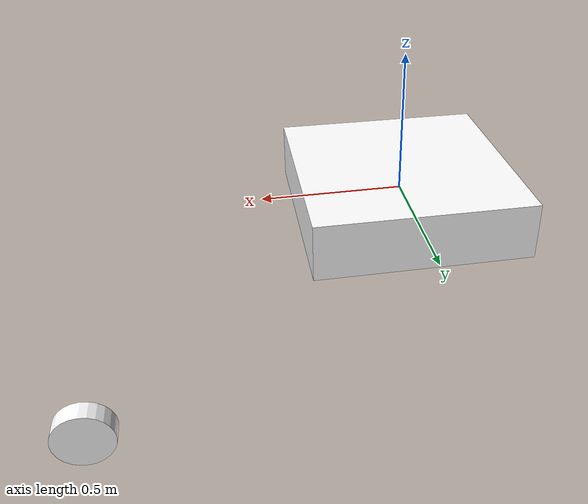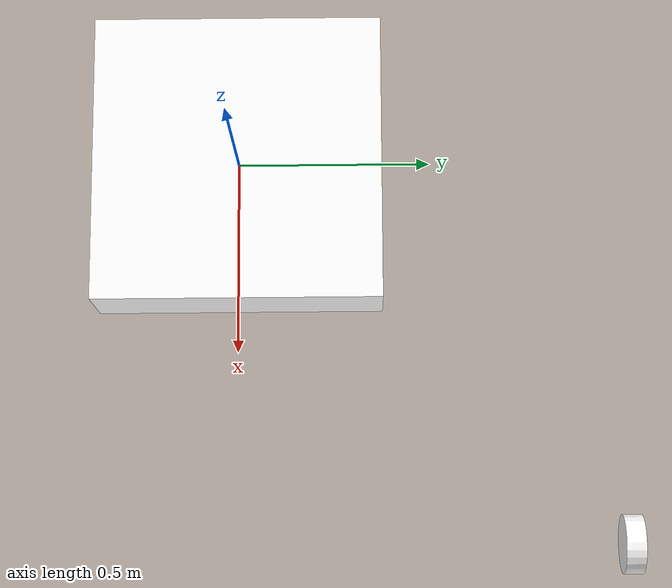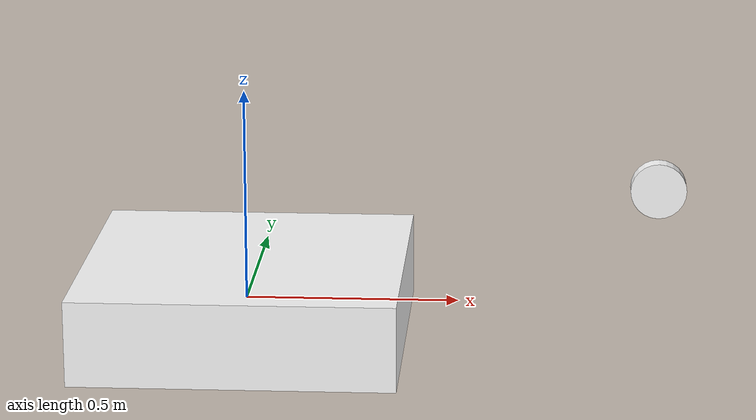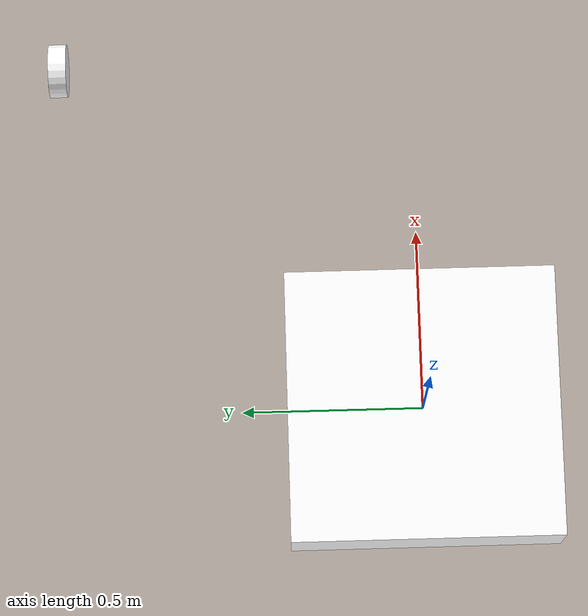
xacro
<?xml version="1.0"?>
<robot name="holonomicdrive" xmlns:xacro="http://ros.org/wiki/xacro">

  <material name="white">
    <color rgba="1 1 1 1"/>
  </material>

  <material name="black">
    <color rgba="0 0 0 1"/>
  </material>

  <xacro:macro name="default_inertial" params="mass">
    <inertial>
      <mass value="${mass}" />
      <inertia ixx="1.0" ixy="0.0" ixz="0.0" iyy="1.0" iyz="0.0" izz="1.0" />
    </inertial>
  </xacro:macro>

  <xacro:property name="robot_width" value = "${0.75}"/>
  <xacro:property name="robot_length" value = "${0.75}"/>

<link name="base_link">
    <visual>
      <geometry>
        <box size = "${robot_width} ${robot_length} 0.2"/>
      </geometry>
      <material name = "white"/>
      <origin xyz = "0 0 0" rpy = "0 0 0"/>
    </visual>
    <collision>
      <geometry>
        <box size = "${robot_width} ${robot_length} 0.2"/>
      </geometry>
      <origin xyz = "0 0 0" rpy = "0 0 0"/>
    </collision>
    <xacro:default_inertial mass="8"/>
  </link>

  <link name="right_front_wheel">
    <visual>
      <geometry>
        <cylinder radius = "0.075" length = "0.05"/>
      </geometry>
      <material name = "white"/>
      <origin rpy="${pi/2} 0 0"/>
    </visual>
    <collision>
     <geometry>
        <cylinder radius = "0.075" length = "0.05"/>
      </geometry>
      <origin rpy="${pi/2} ${pi/2} 0"/>
    </collision>
    <xacro:default_inertial mass="1"/>
  </link>

  <joint name="right_front_wheel_joint" type="continuous">
    <parent link="base_link"/>
    <child link="right_front_wheel"/>
    <origin xyz = "1 1 0"/>
    <axis xyz ="0 0 0"/>
    <limit effort="30" velocity="100"/>
    <dynamics damping="0.0" friction="0.0"/>
  </joint>

  <gazebo>
    <plugin name="gazebo_ros_control" filename="libgazebo_ros_control.so">
      <robotNamespace>/</robotNamespace>
    </plugin>
  </gazebo>

</robot>
